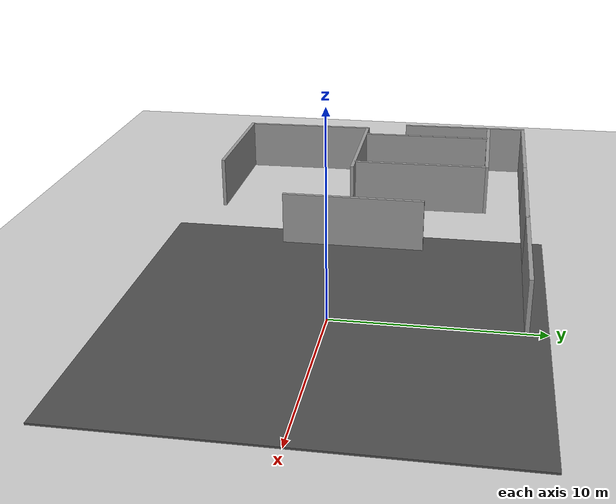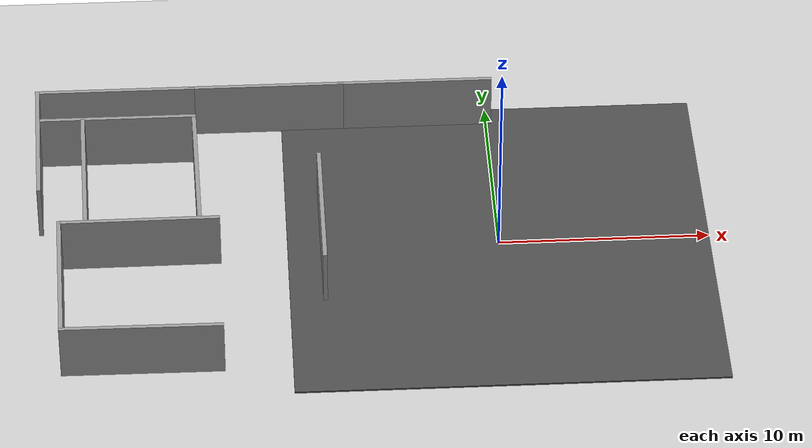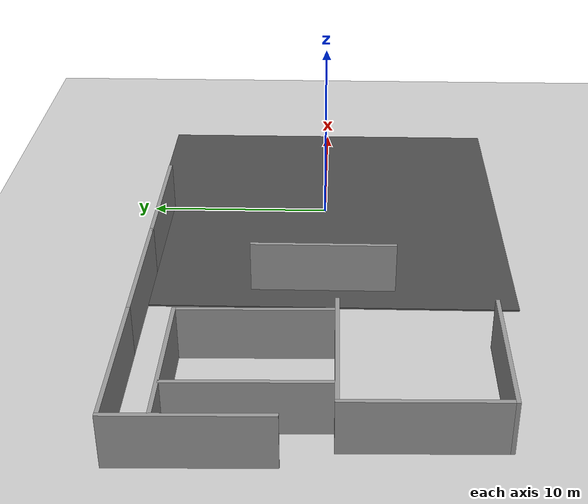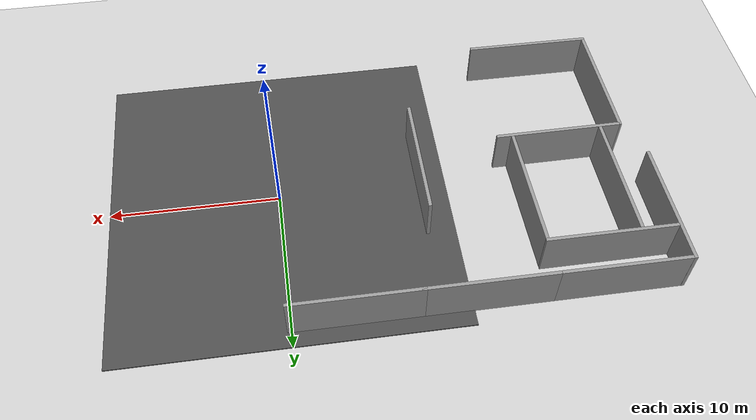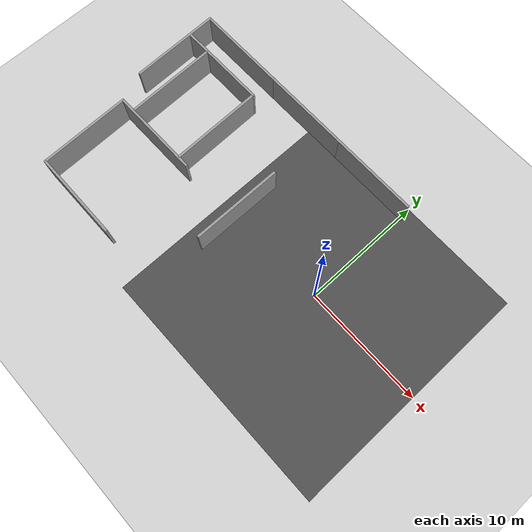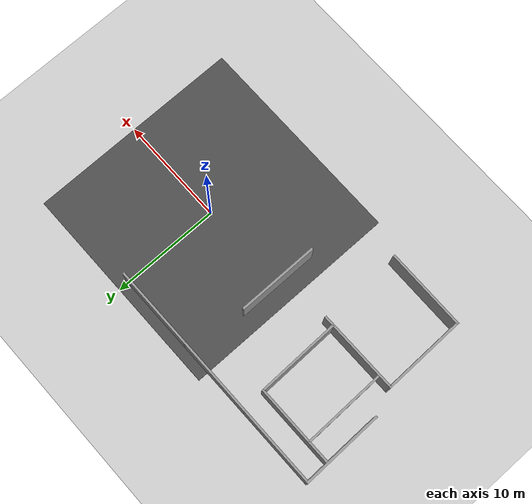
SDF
<sdf version="1.6">
 <world name="default">
  <light name="sun" type="directional">
   <pose>0 0 10 0 -0 0</pose>
   <diffuse>0.8 0.8 0.8 1</diffuse>
   <specular>0.1 0.1 0.1 1</specular>
   <attenuation>
    <range>1000</range>
    <constant>0.9</constant>
    <linear>0.01</linear>
    <quadratic>0.001</quadratic>
   </attenuation>
   <direction>-0.5 0.5 -1</direction>
  </light>
  <model name="ground_plane">
   <static>1</static>
   <link name="link">
    <collision name="collision">
     <geometry><plane><normal>0 0 1</normal><size>100 100</size></plane></geometry>
     <surface><friction><ode><mu>100</mu><mu2>50</mu2></ode></friction></surface>
    </collision>
    <visual name="visual">
     <cast_shadows>0</cast_shadows>
     <geometry><plane><normal>0 0 1</normal><size>100 100</size></plane></geometry>
     <material>
      <script><uri>file://media/materials/scripts/gazebo.material</uri><name>Gazebo/Grey</name></script>
     </material>
    </visual>
   </link>
  </model>
  <model name="asphalt_plane">
   <static>1</static>
   <link name="link">
    <collision name="collision"><geometry><box><size>20 20 0.1</size></box></geometry></collision>
    <visual name="visual">
     <cast_shadows>0</cast_shadows>
     <geometry><box><size>20 20 0.1</size></box></geometry>
     <material>
      <script>
       <uri>model://asphalt_plane/materials/scripts</uri>
       <uri>model://asphalt_plane/materials/textures</uri>
       <name>vrc/asphalt</name>
      </script>
     </material>
    </visual>
   </link>
  </model>
  <physics name="default_physics" default="0" type="ode">
   <ode>
    <solver>
     <type>quick</type>
     <iters>10</iters>
     <sor>1.3</sor>
     <use_dynamic_moi_rescaling>0</use_dynamic_moi_rescaling>
    </solver>
    <constraints>
     <cfm>0</cfm>
     <erp>0.2</erp>
     <contact_max_correcting_vel>100</contact_max_correcting_vel>
     <contact_surface_layer>0.001</contact_surface_layer>
    </constraints>
   </ode>
   <max_step_size>0.002</max_step_size>
   <real_time_factor>1</real_time_factor>
   <real_time_update_rate>500</real_time_update_rate>
  </physics>
  <model name="grey_wall">
   <static>1</static>
   <link name="link">
    <pose>0 0 1.4 0 -0 0</pose>
    <collision name="collision"><geometry><box><size>7.5 0.2 2.8</size></box></geometry></collision>
    <visual name="visual">
     <cast_shadows>0</cast_shadows>
     <geometry><box><size>7.5 0.2 2.8</size></box></geometry>
     <material>
      <script>
       <uri>model://grey_wall/materials/scripts</uri>
       <uri>model://grey_wall/materials/textures</uri>
       <name>vrc/grey_wall</name>
      </script>
     </material>
    </visual>
   </link>
   <pose>-8.34545 0 0 0 0 -1.57</pose>
  </model>
  <model name="grey_wall2">
   <static>1</static>
   <link name="link">
    <pose>0 0 1.4 0 -0 0</pose>
    <collision name="collision"><geometry><box><size>7.5 0.2 2.8</size></box></geometry></collision>
    <visual name="visual">
     <cast_shadows>0</cast_shadows>
     <geometry><box><size>7.5 0.2 2.8</size></box></geometry>
     <material>
      <script>
       <uri>model://grey_wall/materials/scripts</uri>
       <uri>model://grey_wall/materials/textures</uri>
       <name>vrc/grey_wall</name>
      </script>
     </material>
    </visual>
   </link>
   <pose>-3.5 9 0 0 -0 0</pose>
  </model>
  <gravity>0 0 -9.8066</gravity>
  <magnetic_field>6e-06 2.3e-05 -4.2e-05</magnetic_field>
  <atmosphere type="adiabatic"/>
  <scene><ambient>0.4 0.4 0.4 1</ambient><background>0.7 0.7 0.7 1</background><shadows>1</shadows></scene>
  <spherical_coordinates>
   <surface_model>EARTH_WGS84</surface_model>
   <latitude_deg>0</latitude_deg>
   <longitude_deg>0</longitude_deg>
   <elevation>0</elevation>
   <heading_deg>0</heading_deg>
  </spherical_coordinates>
  <model name="grey_wall2_clone">
   <static>1</static>
   <link name="link">
    <pose>0 0 1.4 0 -0 0</pose>
    <collision name="collision"><geometry><box><size>7.5 0.2 2.8</size></box></geometry></collision>
    <visual name="visual">
     <cast_shadows>0</cast_shadows>
     <geometry><box><size>7.5 0.2 2.8</size></box></geometry>
     <material>
      <script>
       <uri>model://grey_wall/materials/scripts</uri>
       <uri>model://grey_wall/materials/textures</uri>
       <name>vrc/grey_wall</name>
      </script>
     </material>
    </visual>
   </link>
   <pose>-10.6988 8.99997 0 0 -0 0</pose>
  </model>
  <model name="grey_wall2_clone_0">
   <static>1</static>
   <link name="link">
    <pose>0 0 1.4 0 -0 0</pose>
    <collision name="collision"><geometry><box><size>7.5 0.2 2.8</size></box></geometry></collision>
    <visual name="visual">
     <cast_shadows>0</cast_shadows>
     <geometry><box><size>7.5 0.2 2.8</size></box></geometry>
     <material>
      <script>
       <uri>model://grey_wall/materials/scripts</uri>
       <uri>model://grey_wall/materials/textures</uri>
       <name>vrc/grey_wall</name>
      </script>
     </material>
    </visual>
   </link>
   <pose>-17.923 8.99828 0 0 -0 0</pose>
  </model>
  <model name="grey_wall2_clone_1">
   <static>1</static>
   <link name="link">
    <pose>0 0 1.4 0 -0 0</pose>
    <collision name="collision"><geometry><box><size>7.5 0.2 2.8</size></box></geometry></collision>
    <visual name="visual">
     <cast_shadows>0</cast_shadows>
     <geometry><box><size>7.5 0.2 2.8</size></box></geometry>
     <material>
      <script>
       <uri>model://grey_wall/materials/scripts</uri>
       <uri>model://grey_wall/materials/textures</uri>
       <name>vrc/grey_wall</name>
      </script>
     </material>
    </visual>
   </link>
   <pose>-21.6906 5.35283 0 0 0 -1.55068</pose>
  </model>
  <model name="grey_wall2_clone_2">
   <static>1</static>
   <link name="link">
    <pose>0 0 1.4 0 -0 0</pose>
    <collision name="collision"><geometry><box><size>7.5 0.2 2.8</size></box></geometry></collision>
    <visual name="visual">
     <cast_shadows>0</cast_shadows>
     <geometry><box><size>7.5 0.2 2.8</size></box></geometry>
     <material>
      <script>
       <uri>model://grey_wall/materials/scripts</uri>
       <uri>model://grey_wall/materials/textures</uri>
       <name>vrc/grey_wall</name>
      </script>
     </material>
    </visual>
   </link>
   <pose>-17.8883 6.86591 0 0 -0 0</pose>
  </model>
  <model name="grey_wall2_clone_1_clone">
   <static>1</static>
   <link name="link">
    <pose>0 0 1.4 0 -0 0</pose>
    <collision name="collision"><geometry><box><size>7.5 0.2 2.8</size></box></geometry></collision>
    <visual name="visual">
     <cast_shadows>0</cast_shadows>
     <geometry><box><size>7.5 0.2 2.8</size></box></geometry>
     <material>
      <script>
       <uri>model://grey_wall/materials/scripts</uri>
       <uri>model://grey_wall/materials/textures</uri>
       <name>vrc/grey_wall</name>
      </script>
     </material>
    </visual>
   </link>
   <pose>-19.4959 3.08308 0 0 0 -1.55068</pose>
  </model>
  <model name="grey_wall2_clone_1_clone_clone">
   <static>1</static>
   <link name="link">
    <pose>0 0 1.4 0 -0 0</pose>
    <collision name="collision"><geometry><box><size>7.5 0.2 2.8</size></box></geometry></collision>
    <visual name="visual">
     <cast_shadows>0</cast_shadows>
     <geometry><box><size>7.5 0.2 2.8</size></box></geometry>
     <material>
      <script>
       <uri>model://grey_wall/materials/scripts</uri>
       <uri>model://grey_wall/materials/textures</uri>
       <name>vrc/grey_wall</name>
      </script>
     </material>
    </visual>
   </link>
   <pose>-14.1582 3.0421 0 0 0 -1.55068</pose>
  </model>
  <model name="grey_wall2_clone_1_clone_clone_0">
   <static>1</static>
   <link name="link">
    <pose>0 0 1.4 0 -0 0</pose>
    <collision name="collision"><geometry><box><size>7.5 0.2 2.8</size></box></geometry></collision>
    <visual name="visual">
     <cast_shadows>0</cast_shadows>
     <geometry><box><size>7.5 0.2 2.8</size></box></geometry>
     <material>
      <script>
       <uri>model://grey_wall/materials/scripts</uri>
       <uri>model://grey_wall/materials/textures</uri>
       <name>vrc/grey_wall</name>
      </script>
     </material>
    </visual>
   </link>
   <pose>-16.8883 -0.747925 0 0 0 -3.13682</pose>
  </model>
  <model name="grey_wall2_clone_1_clone_clone_clone">
   <static>1</static>
   <link name="link">
    <pose>0 0 1.4 0 -0 0</pose>
    <collision name="collision"><geometry><box><size>7.5 0.2 2.8</size></box></geometry></collision>
    <visual name="visual">
     <cast_shadows>0</cast_shadows>
     <geometry><box><size>7.5 0.2 2.8</size></box></geometry>
     <material>
      <script>
       <uri>model://grey_wall/materials/scripts</uri>
       <uri>model://grey_wall/materials/textures</uri>
       <name>vrc/grey_wall</name>
      </script>
     </material>
    </visual>
   </link>
   <pose>-20.5846 -4.41731 0 0 0 -1.55068</pose>
  </model>
  <model name="grey_wall2_clone_1_clone_clone_clone_0">
   <static>1</static>
   <link name="link">
    <pose>0 0 1.4 0 -0 0</pose>
    <collision name="collision"><geometry><box><size>7.5 0.2 2.8</size></box></geometry></collision>
    <visual name="visual">
     <cast_shadows>0</cast_shadows>
     <geometry><box><size>7.5 0.2 2.8</size></box></geometry>
     <material>
      <script>
       <uri>model://grey_wall/materials/scripts</uri>
       <uri>model://grey_wall/materials/textures</uri>
       <name>vrc/grey_wall</name>
      </script>
     </material>
    </visual>
   </link>
   <pose>-16.8626 -8.24275 0 0 -0 3.13582</pose>
  </model>
 </world>
</sdf>
